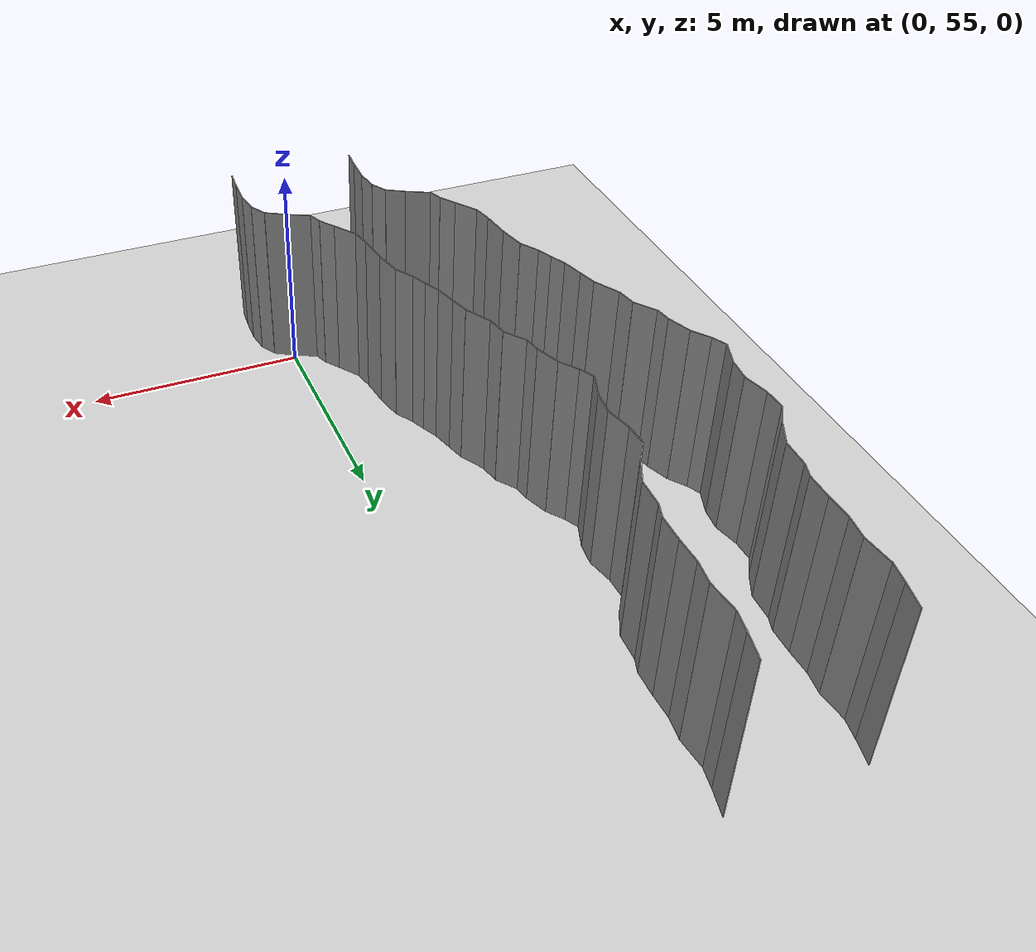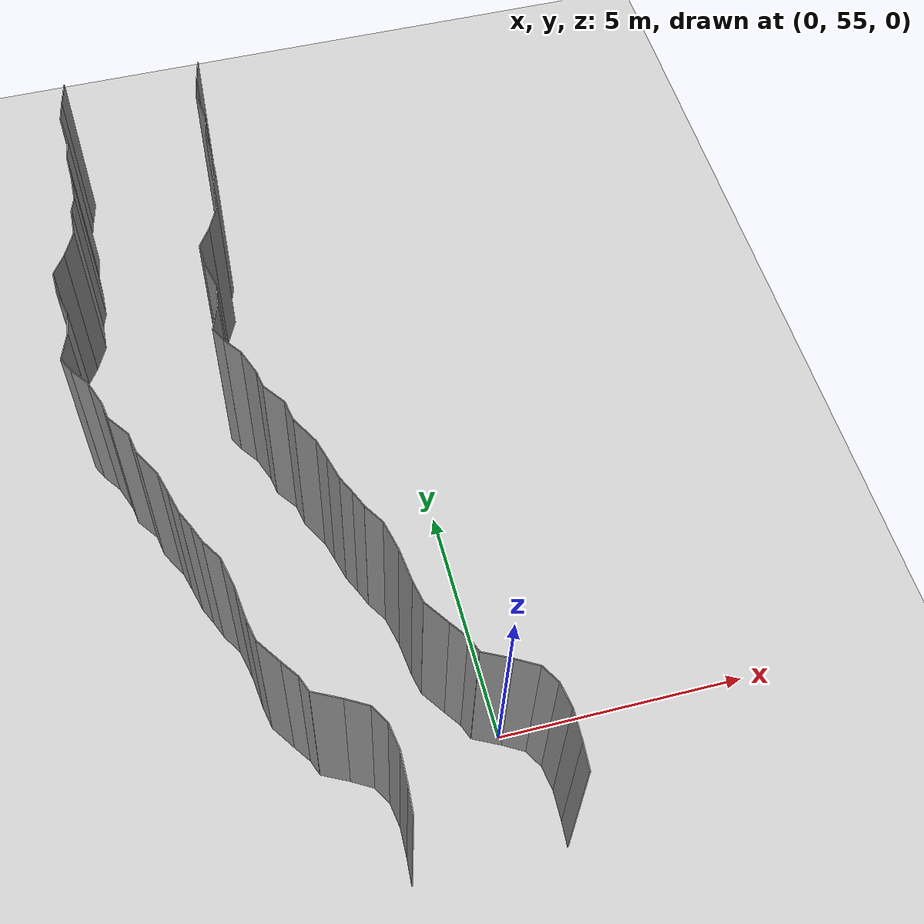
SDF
<sdf version="1.6">
 <world name="default">
  <model name="ground_plane">
   <static>1</static>
   <link name="link">
    <collision name="collision">
     <geometry><plane><normal>0 0 1</normal><size>200 200</size></plane></geometry>
     <surface><friction><ode><mu>100</mu><mu2>50</mu2></ode></friction></surface>
    </collision>
    <visual name="visual">
     <cast_shadows>0</cast_shadows>
     <geometry><plane><normal>0 0 1</normal><size>200 200</size></plane></geometry>
     <material>
      <script><uri>file://media/materials/scripts/gazebo.material</uri><name>Gazebo/Grey</name></script>
     </material>
    </visual>
   </link>
   <pose>0 100 0 0 -0 0</pose>
  </model>
  <model name="wall_224">
   <static>1</static>
   <pose>-2.3359102982344577 52.856014372353535 2 0 0 -0.07759983611430094</pose>
   <link name="link">
    <collision name="collision"><geometry><box><size>0.02 0.508113296003 4</size></box></geometry></collision>
    <visual name="visual">
     <material>
      <script><name>Gazebo/Grey</name><uri>file://media/materials/scripts/gazebo.material</uri></script>
     </material>
     <geometry><box><size>0.02 0.508113296003 4</size></box></geometry>
    </visual>
   </link>
  </model>
  <model name="wall_225">
   <static>1</static>
   <pose>0.6640897017655423 52.856014372353535 2 0 0 -0.07759983611430094</pose>
   <link name="link">
    <collision name="collision"><geometry><box><size>0.02 0.508113296003 4</size></box></geometry></collision>
    <visual name="visual">
     <material>
      <script><name>Gazebo/Grey</name><uri>file://media/materials/scripts/gazebo.material</uri></script>
     </material>
     <geometry><box><size>0.02 0.508113296003 4</size></box></geometry>
    </visual>
   </link>
  </model>
  <model name="wall_226">
   <static>1</static>
   <pose>-2.305103129841839 53.41838339677475 2 0 0 -0.0359373648516644</pose>
   <link name="link">
    <collision name="collision"><geometry><box><size>0.02 0.618553232958 4</size></box></geometry></collision>
    <visual name="visual">
     <material>
      <script><name>Gazebo/Grey</name><uri>file://media/materials/scripts/gazebo.material</uri></script>
     </material>
     <geometry><box><size>0.02 0.618553232958 4</size></box></geometry>
    </visual>
   </link>
  </model>
  <model name="wall_227">
   <static>1</static>
   <pose>0.694896870158161 53.41838339677475 2 0 0 -0.0359373648516644</pose>
   <link name="link">
    <collision name="collision"><geometry><box><size>0.02 0.618553232958 4</size></box></geometry></collision>
    <visual name="visual">
     <material>
      <script><name>Gazebo/Grey</name><uri>file://media/materials/scripts/gazebo.material</uri></script>
     </material>
     <geometry><box><size>0.02 0.618553232958 4</size></box></geometry>
    </visual>
   </link>
  </model>
  <model name="wall_228">
   <static>1</static>
   <pose>-2.3325909983439006 53.9810188793957 2 0 0 0.1510734109438506</pose>
   <link name="link">
    <collision name="collision"><geometry><box><size>0.02 0.512959677786 4</size></box></geometry></collision>
    <visual name="visual">
     <material>
      <script><name>Gazebo/Grey</name><uri>file://media/materials/scripts/gazebo.material</uri></script>
     </material>
     <geometry><box><size>0.02 0.512959677786 4</size></box></geometry>
    </visual>
   </link>
  </model>
  <model name="wall_229">
   <static>1</static>
   <pose>0.6674090016560994 53.9810188793957 2 0 0 0.1510734109438506</pose>
   <link name="link">
    <collision name="collision"><geometry><box><size>0.02 0.512959677786 4</size></box></geometry></collision>
    <visual name="visual">
     <material>
      <script><name>Gazebo/Grey</name><uri>file://media/materials/scripts/gazebo.material</uri></script>
     </material>
     <geometry><box><size>0.02 0.512959677786 4</size></box></geometry>
    </visual>
   </link>
  </model>
  <model name="wall_230">
   <static>1</static>
   <pose>-2.475191520911039 54.41681308273818 2 0 0 0.5185908232200369</pose>
   <link name="link">
    <collision name="collision"><geometry><box><size>0.02 0.419647116719 4</size></box></geometry></collision>
    <visual name="visual">
     <material>
      <script><name>Gazebo/Grey</name><uri>file://media/materials/scripts/gazebo.material</uri></script>
     </material>
     <geometry><box><size>0.02 0.419647116719 4</size></box></geometry>
    </visual>
   </link>
  </model>
  <model name="wall_231">
   <static>1</static>
   <pose>0.5248084790889611 54.41681308273818 2 0 0 0.5185908232200369</pose>
   <link name="link">
    <collision name="collision"><geometry><box><size>0.02 0.419647116719 4</size></box></geometry></collision>
    <visual name="visual">
     <material>
      <script><name>Gazebo/Grey</name><uri>file://media/materials/scripts/gazebo.material</uri></script>
     </material>
     <geometry><box><size>0.02 0.419647116719 4</size></box></geometry>
    </visual>
   </link>
  </model>
  <model name="wall_232">
   <static>1</static>
   <pose>-2.789828894577815 54.720218045606245 2 0 0 1.0487726378894515</pose>
   <link name="link">
    <collision name="collision"><geometry><box><size>0.02 0.48600375844 4</size></box></geometry></collision>
    <visual name="visual">
     <material>
      <script><name>Gazebo/Grey</name><uri>file://media/materials/scripts/gazebo.material</uri></script>
     </material>
     <geometry><box><size>0.02 0.48600375844 4</size></box></geometry>
    </visual>
   </link>
  </model>
  <model name="wall_233">
   <static>1</static>
   <pose>0.2101711054221851 54.720218045606245 2 0 0 1.0487726378894515</pose>
   <link name="link">
    <collision name="collision"><geometry><box><size>0.02 0.48600375844 4</size></box></geometry></collision>
    <visual name="visual">
     <material>
      <script><name>Gazebo/Grey</name><uri>file://media/materials/scripts/gazebo.material</uri></script>
     </material>
     <geometry><box><size>0.02 0.48600375844 4</size></box></geometry>
    </visual>
   </link>
  </model>
  <model name="wall_234">
   <static>1</static>
   <pose>-3.2683793625846995 54.97529888343039 2 0 0 1.1072838685803028</pose>
   <link name="link">
    <collision name="collision"><geometry><box><size>0.02 0.599032444563 4</size></box></geometry></collision>
    <visual name="visual">
     <material>
      <script><name>Gazebo/Grey</name><uri>file://media/materials/scripts/gazebo.material</uri></script>
     </material>
     <geometry><box><size>0.02 0.599032444563 4</size></box></geometry>
    </visual>
   </link>
  </model>
  <model name="wall_235">
   <static>1</static>
   <pose>-0.2683793625846995 54.97529888343039 2 0 0 1.1072838685803028</pose>
   <link name="link">
    <collision name="collision"><geometry><box><size>0.02 0.599032444563 4</size></box></geometry></collision>
    <visual name="visual">
     <material>
      <script><name>Gazebo/Grey</name><uri>file://media/materials/scripts/gazebo.material</uri></script>
     </material>
     <geometry><box><size>0.02 0.599032444563 4</size></box></geometry>
    </visual>
   </link>
  </model>
  <model name="wall_236">
   <static>1</static>
   <pose>-3.5949318400607835 55.26452257958123 2 0 0 0.3610089806441636</pose>
   <link name="link">
    <collision name="collision"><geometry><box><size>0.02 0.332026478814 4</size></box></geometry></collision>
    <visual name="visual">
     <material>
      <script><name>Gazebo/Grey</name><uri>file://media/materials/scripts/gazebo.material</uri></script>
     </material>
     <geometry><box><size>0.02 0.332026478814 4</size></box></geometry>
    </visual>
   </link>
  </model>
  <model name="wall_237">
   <static>1</static>
   <pose>-0.5949318400607835 55.26452257958123 2 0 0 0.3610089806441636</pose>
   <link name="link">
    <collision name="collision"><geometry><box><size>0.02 0.332026478814 4</size></box></geometry></collision>
    <visual name="visual">
     <material>
      <script><name>Gazebo/Grey</name><uri>file://media/materials/scripts/gazebo.material</uri></script>
     </material>
     <geometry><box><size>0.02 0.332026478814 4</size></box></geometry>
    </visual>
   </link>
  </model>
  <model name="wall_238">
   <static>1</static>
   <pose>-3.7744003689441095 55.59032106964446 2 0 0 0.6165643094516821</pose>
   <link name="link">
    <collision name="collision"><geometry><box><size>0.02 0.417925239745 4</size></box></geometry></collision>
    <visual name="visual">
     <material>
      <script><name>Gazebo/Grey</name><uri>file://media/materials/scripts/gazebo.material</uri></script>
     </material>
     <geometry><box><size>0.02 0.417925239745 4</size></box></geometry>
    </visual>
   </link>
  </model>
  <model name="wall_239">
   <static>1</static>
   <pose>-0.7744003689441095 55.59032106964446 2 0 0 0.6165643094516821</pose>
   <link name="link">
    <collision name="collision"><geometry><box><size>0.02 0.417925239745 4</size></box></geometry></collision>
    <visual name="visual">
     <material>
      <script><name>Gazebo/Grey</name><uri>file://media/materials/scripts/gazebo.material</uri></script>
     </material>
     <geometry><box><size>0.02 0.417925239745 4</size></box></geometry>
    </visual>
   </link>
  </model>
  <model name="wall_240">
   <static>1</static>
   <pose>-4.064603842347604 56.009952567020484 2 0 0 0.5970535316060995</pose>
   <link name="link">
    <collision name="collision"><geometry><box><size>0.02 0.602530762697 4</size></box></geometry></collision>
    <visual name="visual">
     <material>
      <script><name>Gazebo/Grey</name><uri>file://media/materials/scripts/gazebo.material</uri></script>
     </material>
     <geometry><box><size>0.02 0.602530762697 4</size></box></geometry>
    </visual>
   </link>
  </model>
  <model name="wall_241">
   <static>1</static>
   <pose>-1.064603842347604 56.009952567020484 2 0 0 0.5970535316060995</pose>
   <link name="link">
    <collision name="collision"><geometry><box><size>0.02 0.602530762697 4</size></box></geometry></collision>
    <visual name="visual">
     <material>
      <script><name>Gazebo/Grey</name><uri>file://media/materials/scripts/gazebo.material</uri></script>
     </material>
     <geometry><box><size>0.02 0.602530762697 4</size></box></geometry>
    </visual>
   </link>
  </model>
  <model name="wall_242">
   <static>1</static>
   <pose>-4.278652368464157 56.47889095040559 2 0 0 0.20052598376622385</pose>
   <link name="link">
    <collision name="collision"><geometry><box><size>0.02 0.448574967873 4</size></box></geometry></collision>
    <visual name="visual">
     <material>
      <script><name>Gazebo/Grey</name><uri>file://media/materials/scripts/gazebo.material</uri></script>
     </material>
     <geometry><box><size>0.02 0.448574967873 4</size></box></geometry>
    </visual>
   </link>
  </model>
  <model name="wall_243">
   <static>1</static>
   <pose>-1.278652368464157 56.47889095040559 2 0 0 0.20052598376622385</pose>
   <link name="link">
    <collision name="collision"><geometry><box><size>0.02 0.448574967873 4</size></box></geometry></collision>
    <visual name="visual">
     <material>
      <script><name>Gazebo/Grey</name><uri>file://media/materials/scripts/gazebo.material</uri></script>
     </material>
     <geometry><box><size>0.02 0.448574967873 4</size></box></geometry>
    </visual>
   </link>
  </model>
  <model name="wall_244">
   <static>1</static>
   <pose>-4.362899017118538 57.04148127822715 2 0 0 0.11492979365488808</pose>
   <link name="link">
    <collision name="collision"><geometry><box><size>0.02 0.690147270935 4</size></box></geometry></collision>
    <visual name="visual">
     <material>
      <script><name>Gazebo/Grey</name><uri>file://media/materials/scripts/gazebo.material</uri></script>
     </material>
     <geometry><box><size>0.02 0.690147270935 4</size></box></geometry>
    </visual>
   </link>
  </model>
  <model name="wall_245">
   <static>1</static>
   <pose>-1.3628990171185382 57.04148127822715 2 0 0 0.11492979365488808</pose>
   <link name="link">
    <collision name="collision"><geometry><box><size>0.02 0.690147270935 4</size></box></geometry></collision>
    <visual name="visual">
     <material>
      <script><name>Gazebo/Grey</name><uri>file://media/materials/scripts/gazebo.material</uri></script>
     </material>
     <geometry><box><size>0.02 0.690147270935 4</size></box></geometry>
    </visual>
   </link>
  </model>
  <model name="wall_246">
   <static>1</static>
   <pose>-4.470513653157024 57.69162182732667 2 0 0 0.21787539295764835</pose>
   <link name="link">
    <collision name="collision"><geometry><box><size>0.02 0.629570582731 4</size></box></geometry></collision>
    <visual name="visual">
     <material>
      <script><name>Gazebo/Grey</name><uri>file://media/materials/scripts/gazebo.material</uri></script>
     </material>
     <geometry><box><size>0.02 0.629570582731 4</size></box></geometry>
    </visual>
   </link>
  </model>
  <model name="wall_247">
   <static>1</static>
   <pose>-1.470513653157024 57.69162182732667 2 0 0 0.21787539295764835</pose>
   <link name="link">
    <collision name="collision"><geometry><box><size>0.02 0.629570582731 4</size></box></geometry></collision>
    <visual name="visual">
     <material>
      <script><name>Gazebo/Grey</name><uri>file://media/materials/scripts/gazebo.material</uri></script>
     </material>
     <geometry><box><size>0.02 0.629570582731 4</size></box></geometry>
    </visual>
   </link>
  </model>
  <model name="wall_248">
   <static>1</static>
   <pose>-4.666322860935048 58.20532946720401 2 0 0 0.5543680427474541</pose>
   <link name="link">
    <collision name="collision"><geometry><box><size>0.02 0.485429646869 4</size></box></geometry></collision>
    <visual name="visual">
     <material>
      <script><name>Gazebo/Grey</name><uri>file://media/materials/scripts/gazebo.material</uri></script>
     </material>
     <geometry><box><size>0.02 0.485429646869 4</size></box></geometry>
    </visual>
   </link>
  </model>
  <model name="wall_249">
   <static>1</static>
   <pose>-1.6663228609350478 58.20532946720401 2 0 0 0.5543680427474541</pose>
   <link name="link">
    <collision name="collision"><geometry><box><size>0.02 0.485429646869 4</size></box></geometry></collision>
    <visual name="visual">
     <material>
      <script><name>Gazebo/Grey</name><uri>file://media/materials/scripts/gazebo.material</uri></script>
     </material>
     <geometry><box><size>0.02 0.485429646869 4</size></box></geometry>
    </visual>
   </link>
  </model>
  <model name="wall_250">
   <static>1</static>
   <pose>-4.865950461681137 58.58469147245386 2 0 0 0.39370029362409004</pose>
   <link name="link">
    <collision name="collision"><geometry><box><size>0.02 0.374658472371 4</size></box></geometry></collision>
    <visual name="visual">
     <material>
      <script><name>Gazebo/Grey</name><uri>file://media/materials/scripts/gazebo.material</uri></script>
     </material>
     <geometry><box><size>0.02 0.374658472371 4</size></box></geometry>
    </visual>
   </link>
  </model>
  <model name="wall_251">
   <static>1</static>
   <pose>-1.8659504616811367 58.58469147245386 2 0 0 0.39370029362409004</pose>
   <link name="link">
    <collision name="collision"><geometry><box><size>0.02 0.374658472371 4</size></box></geometry></collision>
    <visual name="visual">
     <material>
      <script><name>Gazebo/Grey</name><uri>file://media/materials/scripts/gazebo.material</uri></script>
     </material>
     <geometry><box><size>0.02 0.374658472371 4</size></box></geometry>
    </visual>
   </link>
  </model>
  <model name="wall_252">
   <static>1</static>
   <pose>-5.019596044329615 58.932295364348896 2 0 0 0.43804508166088096</pose>
   <link name="link">
    <collision name="collision"><geometry><box><size>0.02 0.385621596714 4</size></box></geometry></collision>
    <visual name="visual">
     <material>
      <script><name>Gazebo/Grey</name><uri>file://media/materials/scripts/gazebo.material</uri></script>
     </material>
     <geometry><box><size>0.02 0.385621596714 4</size></box></geometry>
    </visual>
   </link>
  </model>
  <model name="wall_253">
   <static>1</static>
   <pose>-2.0195960443296146 58.932295364348896 2 0 0 0.43804508166088096</pose>
   <link name="link">
    <collision name="collision"><geometry><box><size>0.02 0.385621596714 4</size></box></geometry></collision>
    <visual name="visual">
     <material>
      <script><name>Gazebo/Grey</name><uri>file://media/materials/scripts/gazebo.material</uri></script>
     </material>
     <geometry><box><size>0.02 0.385621596714 4</size></box></geometry>
    </visual>
   </link>
  </model>
  <model name="wall_254">
   <static>1</static>
   <pose>-5.1672077501411815 59.353247771207826 2 0 0 0.2611132470291813</pose>
   <link name="link">
    <collision name="collision"><geometry><box><size>0.02 0.509979274434 4</size></box></geometry></collision>
    <visual name="visual">
     <material>
      <script><name>Gazebo/Grey</name><uri>file://media/materials/scripts/gazebo.material</uri></script>
     </material>
     <geometry><box><size>0.02 0.509979274434 4</size></box></geometry>
    </visual>
   </link>
  </model>
  <model name="wall_255">
   <static>1</static>
   <pose>-2.1672077501411815 59.353247771207826 2 0 0 0.2611132470291813</pose>
   <link name="link">
    <collision name="collision"><geometry><box><size>0.02 0.509979274434 4</size></box></geometry></collision>
    <visual name="visual">
     <material>
      <script><name>Gazebo/Grey</name><uri>file://media/materials/scripts/gazebo.material</uri></script>
     </material>
     <geometry><box><size>0.02 0.509979274434 4</size></box></geometry>
    </visual>
   </link>
  </model>
  <model name="wall_256">
   <static>1</static>
   <pose>-5.290657223075178 59.80589305586158 2 0 0 0.2723729876647657</pose>
   <link name="link">
    <collision name="collision"><geometry><box><size>0.02 0.42839048323 4</size></box></geometry></collision>
    <visual name="visual">
     <material>
      <script><name>Gazebo/Grey</name><uri>file://media/materials/scripts/gazebo.material</uri></script>
     </material>
     <geometry><box><size>0.02 0.42839048323 4</size></box></geometry>
    </visual>
   </link>
  </model>
  <model name="wall_257">
   <static>1</static>
   <pose>-2.2906572230751783 59.80589305586158 2 0 0 0.2723729876647657</pose>
   <link name="link">
    <collision name="collision"><geometry><box><size>0.02 0.42839048323 4</size></box></geometry></collision>
    <visual name="visual">
     <material>
      <script><name>Gazebo/Grey</name><uri>file://media/materials/scripts/gazebo.material</uri></script>
     </material>
     <geometry><box><size>0.02 0.42839048323 4</size></box></geometry>
    </visual>
   </link>
  </model>
  <model name="wall_258">
   <static>1</static>
   <pose>-5.505178889973572 60.29510163817705 2 0 0 0.506361781487826</pose>
   <link name="link">
    <collision name="collision"><geometry><box><size>0.02 0.64700926934 4</size></box></geometry></collision>
    <visual name="visual">
     <material>
      <script><name>Gazebo/Grey</name><uri>file://media/materials/scripts/gazebo.material</uri></script>
     </material>
     <geometry><box><size>0.02 0.64700926934 4</size></box></geometry>
    </visual>
   </link>
  </model>
  <model name="wall_259">
   <static>1</static>
   <pose>-2.505178889973572 60.29510163817705 2 0 0 0.506361781487826</pose>
   <link name="link">
    <collision name="collision"><geometry><box><size>0.02 0.64700926934 4</size></box></geometry></collision>
    <visual name="visual">
     <material>
      <script><name>Gazebo/Grey</name><uri>file://media/materials/scripts/gazebo.material</uri></script>
     </material>
     <geometry><box><size>0.02 0.64700926934 4</size></box></geometry>
    </visual>
   </link>
  </model>
  <model name="wall_260">
   <static>1</static>
   <pose>-5.703065220521713 60.801594756290974 2 0 0 0.18130533439799648</pose>
   <link name="link">
    <collision name="collision"><geometry><box><size>0.02 0.454618619999 4</size></box></geometry></collision>
    <visual name="visual">
     <material>
      <script><name>Gazebo/Grey</name><uri>file://media/materials/scripts/gazebo.material</uri></script>
     </material>
     <geometry><box><size>0.02 0.454618619999 4</size></box></geometry>
    </visual>
   </link>
  </model>
  <model name="wall_261">
   <static>1</static>
   <pose>-2.7030652205217134 60.801594756290974 2 0 0 0.18130533439799648</pose>
   <link name="link">
    <collision name="collision"><geometry><box><size>0.02 0.454618619999 4</size></box></geometry></collision>
    <visual name="visual">
     <material>
      <script><name>Gazebo/Grey</name><uri>file://media/materials/scripts/gazebo.material</uri></script>
     </material>
     <geometry><box><size>0.02 0.454618619999 4</size></box></geometry>
    </visual>
   </link>
  </model>
  <model name="wall_262">
   <static>1</static>
   <pose>-5.908708701363812 61.25340962510207 2 0 0 0.6249744650437272</pose>
   <link name="link">
    <collision name="collision"><geometry><box><size>0.02 0.562854558998 4</size></box></geometry></collision>
    <visual name="visual">
     <material>
      <script><name>Gazebo/Grey</name><uri>file://media/materials/scripts/gazebo.material</uri></script>
     </material>
     <geometry><box><size>0.02 0.562854558998 4</size></box></geometry>
    </visual>
   </link>
  </model>
  <model name="wall_263">
   <static>1</static>
   <pose>-2.908708701363812 61.25340962510207 2 0 0 0.6249744650437272</pose>
   <link name="link">
    <collision name="collision"><geometry><box><size>0.02 0.562854558998 4</size></box></geometry></collision>
    <visual name="visual">
     <material>
      <script><name>Gazebo/Grey</name><uri>file://media/materials/scripts/gazebo.material</uri></script>
     </material>
     <geometry><box><size>0.02 0.562854558998 4</size></box></geometry>
    </visual>
   </link>
  </model>
  <model name="wall_264">
   <static>1</static>
   <pose>-6.103023851499964 61.65856570751707 2 0 0 0.16608995754905284</pose>
   <link name="link">
    <collision name="collision"><geometry><box><size>0.02 0.358786824984 4</size></box></geometry></collision>
    <visual name="visual">
     <material>
      <script><name>Gazebo/Grey</name><uri>file://media/materials/scripts/gazebo.material</uri></script>
     </material>
     <geometry><box><size>0.02 0.358786824984 4</size></box></geometry>
    </visual>
   </link>
  </model>
  <model name="wall_265">
   <static>1</static>
   <pose>-3.103023851499964 61.65856570751707 2 0 0 0.16608995754905284</pose>
   <link name="link">
    <collision name="collision"><geometry><box><size>0.02 0.358786824984 4</size></box></geometry></collision>
    <visual name="visual">
     <material>
      <script><name>Gazebo/Grey</name><uri>file://media/materials/scripts/gazebo.material</uri></script>
     </material>
     <geometry><box><size>0.02 0.358786824984 4</size></box></geometry>
    </visual>
   </link>
  </model>
  <model name="wall_266">
   <static>1</static>
   <pose>-6.23199558001584 62.10643979270212 2 0 0 0.35133088562535564</pose>
   <link name="link">
    <collision name="collision"><geometry><box><size>0.02 0.577153844235 4</size></box></geometry></collision>
    <visual name="visual">
     <material>
      <script><name>Gazebo/Grey</name><uri>file://media/materials/scripts/gazebo.material</uri></script>
     </material>
     <geometry><box><size>0.02 0.577153844235 4</size></box></geometry>
    </visual>
   </link>
  </model>
  <model name="wall_267">
   <static>1</static>
   <pose>-3.23199558001584 62.10643979270212 2 0 0 0.35133088562535564</pose>
   <link name="link">
    <collision name="collision"><geometry><box><size>0.02 0.577153844235 4</size></box></geometry></collision>
    <visual name="visual">
     <material>
      <script><name>Gazebo/Grey</name><uri>file://media/materials/scripts/gazebo.material</uri></script>
     </material>
     <geometry><box><size>0.02 0.577153844235 4</size></box></geometry>
    </visual>
   </link>
  </model>
  <model name="wall_268">
   <static>1</static>
   <pose>-6.470571471654055 62.56840816110899 2 0 0 0.6299590807751351</pose>
   <link name="link">
    <collision name="collision"><geometry><box><size>0.02 0.472789146207 4</size></box></geometry></collision>
    <visual name="visual">
     <material>
      <script><name>Gazebo/Grey</name><uri>file://media/materials/scripts/gazebo.material</uri></script>
     </material>
     <geometry><box><size>0.02 0.472789146207 4</size></box></geometry>
    </visual>
   </link>
  </model>
  <model name="wall_269">
   <static>1</static>
   <pose>-3.470571471654055 62.56840816110899 2 0 0 0.6299590807751351</pose>
   <link name="link">
    <collision name="collision"><geometry><box><size>0.02 0.472789146207 4</size></box></geometry></collision>
    <visual name="visual">
     <material>
      <script><name>Gazebo/Grey</name><uri>file://media/materials/scripts/gazebo.material</uri></script>
     </material>
     <geometry><box><size>0.02 0.472789146207 4</size></box></geometry>
    </visual>
   </link>
  </model>
  <model name="wall_270">
   <static>1</static>
   <pose>-6.689275732501709 62.91465677732413 2 0 0 0.473017176564167</pose>
   <link name="link">
    <collision name="collision"><geometry><box><size>0.02 0.348753053867 4</size></box></geometry></collision>
    <visual name="visual">
     <material>
      <script><name>Gazebo/Grey</name><uri>file://media/materials/scripts/gazebo.material</uri></script>
     </material>
     <geometry><box><size>0.02 0.348753053867 4</size></box></geometry>
    </visual>
   </link>
  </model>
  <model name="wall_271">
   <static>1</static>
   <pose>-3.6892757325017094 62.91465677732413 2 0 0 0.473017176564167</pose>
   <link name="link">
    <collision name="collision"><geometry><box><size>0.02 0.348753053867 4</size></box></geometry></collision>
    <visual name="visual">
     <material>
      <script><name>Gazebo/Grey</name><uri>file://media/materials/scripts/gazebo.material</uri></script>
     </material>
     <geometry><box><size>0.02 0.348753053867 4</size></box></geometry>
    </visual>
   </link>
  </model>
  <model name="wall_272">
   <static>1</static>
   <pose>-6.665736770924762 63.35857601903824 2 0 0 -0.3426459359933403</pose>
   <link name="link">
    <collision name="collision"><geometry><box><size>0.02 0.613014438112 4</size></box></geometry></collision>
    <visual name="visual">
     <material>
      <script><name>Gazebo/Grey</name><uri>file://media/materials/scripts/gazebo.material</uri></script>
     </material>
     <geometry><box><size>0.02 0.613014438112 4</size></box></geometry>
    </visual>
   </link>
  </model>
  <model name="wall_273">
   <static>1</static>
   <pose>-3.665736770924762 63.35857601903824 2 0 0 -0.3426459359933403</pose>
   <link name="link">
    <collision name="collision"><geometry><box><size>0.02 0.613014438112 4</size></box></geometry></collision>
    <visual name="visual">
     <material>
      <script><name>Gazebo/Grey</name><uri>file://media/materials/scripts/gazebo.material</uri></script>
     </material>
     <geometry><box><size>0.02 0.613014438112 4</size></box></geometry>
    </visual>
   </link>
  </model>
  <model name="wall_274">
   <static>1</static>
   <pose>-6.534555457856282 63.900916896339304 2 0 0 -0.1107250888503604</pose>
   <link name="link">
    <collision name="collision"><geometry><box><size>0.02 0.510428211528 4</size></box></geometry></collision>
    <visual name="visual">
     <material>
      <script><name>Gazebo/Grey</name><uri>file://media/materials/scripts/gazebo.material</uri></script>
     </material>
     <geometry><box><size>0.02 0.510428211528 4</size></box></geometry>
    </visual>
   </link>
  </model>
  <model name="wall_275">
   <static>1</static>
   <pose>-3.534555457856282 63.900916896339304 2 0 0 -0.1107250888503604</pose>
   <link name="link">
    <collision name="collision"><geometry><box><size>0.02 0.510428211528 4</size></box></geometry></collision>
    <visual name="visual">
     <material>
      <script><name>Gazebo/Grey</name><uri>file://media/materials/scripts/gazebo.material</uri></script>
     </material>
     <geometry><box><size>0.02 0.510428211528 4</size></box></geometry>
    </visual>
   </link>
  </model>
  <model name="wall_276">
   <static>1</static>
   <pose>-6.575575774748878 64.4488648760996 2 0 0 0.2310099226311396</pose>
   <link name="link">
    <collision name="collision"><geometry><box><size>0.02 0.604655771246 4</size></box></geometry></collision>
    <visual name="visual">
     <material>
      <script><name>Gazebo/Grey</name><uri>file://media/materials/scripts/gazebo.material</uri></script>
     </material>
     <geometry><box><size>0.02 0.604655771246 4</size></box></geometry>
    </visual>
   </link>
  </model>
  <model name="wall_277">
   <static>1</static>
   <pose>-3.575575774748878 64.4488648760996 2 0 0 0.2310099226311396</pose>
   <link name="link">
    <collision name="collision"><geometry><box><size>0.02 0.604655771246 4</size></box></geometry></collision>
    <visual name="visual">
     <material>
      <script><name>Gazebo/Grey</name><uri>file://media/materials/scripts/gazebo.material</uri></script>
     </material>
     <geometry><box><size>0.02 0.604655771246 4</size></box></geometry>
    </visual>
   </link>
  </model>
  <model name="wall_278">
   <static>1</static>
   <pose>-6.651608842098297 64.98680013885395 2 0 0 0.027951567111604673</pose>
   <link name="link">
    <collision name="collision"><geometry><box><size>0.02 0.487467450803 4</size></box></geometry></collision>
    <visual name="visual">
     <material>
      <script><name>Gazebo/Grey</name><uri>file://media/materials/scripts/gazebo.material</uri></script>
     </material>
     <geometry><box><size>0.02 0.487467450803 4</size></box></geometry>
    </visual>
   </link>
  </model>
  <model name="wall_279">
   <static>1</static>
   <pose>-3.6516088420982973 64.98680013885395 2 0 0 0.027951567111604673</pose>
   <link name="link">
    <collision name="collision"><geometry><box><size>0.02 0.487467450803 4</size></box></geometry></collision>
    <visual name="visual">
     <material>
      <script><name>Gazebo/Grey</name><uri>file://media/materials/scripts/gazebo.material</uri></script>
     </material>
     <geometry><box><size>0.02 0.487467450803 4</size></box></geometry>
    </visual>
   </link>
  </model>
  <model name="wall_280">
   <static>1</static>
   <pose>-6.522048032579576 65.43681549685319 2 0 0 -0.5839261691565527</pose>
   <link name="link">
    <collision name="collision"><geometry><box><size>0.02 0.494727815832 4</size></box></geometry></collision>
    <visual name="visual">
     <material>
      <script><name>Gazebo/Grey</name><uri>file://media/materials/scripts/gazebo.material</uri></script>
     </material>
     <geometry><box><size>0.02 0.494727815832 4</size></box></geometry>
    </visual>
   </link>
  </model>
  <model name="wall_281">
   <static>1</static>
   <pose>-3.522048032579576 65.43681549685319 2 0 0 -0.5839261691565527</pose>
   <link name="link">
    <collision name="collision"><geometry><box><size>0.02 0.494727815832 4</size></box></geometry></collision>
    <visual name="visual">
     <material>
      <script><name>Gazebo/Grey</name><uri>file://media/materials/scripts/gazebo.material</uri></script>
     </material>
     <geometry><box><size>0.02 0.494727815832 4</size></box></geometry>
    </visual>
   </link>
  </model>
  <model name="wall_282">
   <static>1</static>
   <pose>-6.25030322673557 65.91858813037192 2 0 0 -0.45686870970105475</pose>
   <link name="link">
    <collision name="collision"><geometry><box><size>0.02 0.613737600406 4</size></box></geometry></collision>
    <visual name="visual">
     <material>
      <script><name>Gazebo/Grey</name><uri>file://media/materials/scripts/gazebo.material</uri></script>
     </material>
     <geometry><box><size>0.02 0.613737600406 4</size></box></geometry>
    </visual>
   </link>
  </model>
  <model name="wall_283">
   <static>1</static>
   <pose>-3.2503032267355696 65.91858813037192 2 0 0 -0.45686870970105475</pose>
   <link name="link">
    <collision name="collision"><geometry><box><size>0.02 0.613737600406 4</size></box></geometry></collision>
    <visual name="visual">
     <material>
      <script><name>Gazebo/Grey</name><uri>file://media/materials/scripts/gazebo.material</uri></script>
     </material>
     <geometry><box><size>0.02 0.613737600406 4</size></box></geometry>
    </visual>
   </link>
  </model>
  <model name="wall_284">
   <static>1</static>
   <pose>-6.101866665712493 66.50751922160205 2 0 0 -0.04164400060387291</pose>
   <link name="link">
    <collision name="collision"><geometry><box><size>0.02 0.627614728205 4</size></box></geometry></collision>
    <visual name="visual">
     <material>
      <script><name>Gazebo/Grey</name><uri>file://media/materials/scripts/gazebo.material</uri></script>
     </material>
     <geometry><box><size>0.02 0.627614728205 4</size></box></geometry>
    </visual>
   </link>
  </model>
  <model name="wall_285">
   <static>1</static>
   <pose>-3.1018666657124934 66.50751922160205 2 0 0 -0.04164400060387291</pose>
   <link name="link">
    <collision name="collision"><geometry><box><size>0.02 0.627614728205 4</size></box></geometry></collision>
    <visual name="visual">
     <material>
      <script><name>Gazebo/Grey</name><uri>file://media/materials/scripts/gazebo.material</uri></script>
     </material>
     <geometry><box><size>0.02 0.627614728205 4</size></box></geometry>
    </visual>
   </link>
  </model>
  <model name="wall_286">
   <static>1</static>
   <pose>-6.03510114565318 66.98170914249411 2 0 0 -0.3225881769856655</pose>
   <link name="link">
    <collision name="collision"><geometry><box><size>0.02 0.338784394395 4</size></box></geometry></collision>
    <visual name="visual">
     <material>
      <script><name>Gazebo/Grey</name><uri>file://media/materials/scripts/gazebo.material</uri></script>
     </material>
     <geometry><box><size>0.02 0.338784394395 4</size></box></geometry>
    </visual>
   </link>
  </model>
  <model name="wall_287">
   <static>1</static>
   <pose>-3.0351011456531802 66.98170914249411 2 0 0 -0.3225881769856655</pose>
   <link name="link">
    <collision name="collision"><geometry><box><size>0.02 0.338784394395 4</size></box></geometry></collision>
    <visual name="visual">
     <material>
      <script><name>Gazebo/Grey</name><uri>file://media/materials/scripts/gazebo.material</uri></script>
     </material>
     <geometry><box><size>0.02 0.338784394395 4</size></box></geometry>
    </visual>
   </link>
  </model>
  <model name="wall_288">
   <static>1</static>
   <pose>-5.975414184913356 67.44091865273319 2 0 0 -0.020046752765556654</pose>
   <link name="link">
    <collision name="collision"><geometry><box><size>0.02 0.597229774693 4</size></box></geometry></collision>
    <visual name="visual">
     <material>
      <script><name>Gazebo/Grey</name><uri>file://media/materials/scripts/gazebo.material</uri></script>
     </material>
     <geometry><box><size>0.02 0.597229774693 4</size></box></geometry>
    </visual>
   </link>
  </model>
  <model name="wall_289">
   <static>1</static>
   <pose>-2.9754141849133564 67.44091865273319 2 0 0 -0.020046752765556654</pose>
   <link name="link">
    <collision name="collision"><geometry><box><size>0.02 0.597229774693 4</size></box></geometry></collision>
    <visual name="visual">
     <material>
      <script><name>Gazebo/Grey</name><uri>file://media/materials/scripts/gazebo.material</uri></script>
     </material>
     <geometry><box><size>0.02 0.597229774693 4</size></box></geometry>
    </visual>
   </link>
  </model>
  <model name="wall_290">
   <static>1</static>
   <pose>-5.977848973787903 68.02488458547018 2 0 0 0.02949502082618248</pose>
   <link name="link">
    <collision name="collision"><geometry><box><size>0.02 0.571070476971 4</size></box></geometry></collision>
    <visual name="visual">
     <material>
      <script><name>Gazebo/Grey</name><uri>file://media/materials/scripts/gazebo.material</uri></script>
     </material>
     <geometry><box><size>0.02 0.571070476971 4</size></box></geometry>
    </visual>
   </link>
  </model>
  <model name="wall_291">
   <static>1</static>
   <pose>-2.9778489737879026 68.02488458547018 2 0 0 0.02949502082618248</pose>
   <link name="link">
    <collision name="collision"><geometry><box><size>0.02 0.571070476971 4</size></box></geometry></collision>
    <visual name="visual">
     <material>
      <script><name>Gazebo/Grey</name><uri>file://media/materials/scripts/gazebo.material</uri></script>
     </material>
     <geometry><box><size>0.02 0.571070476971 4</size></box></geometry>
    </visual>
   </link>
  </model>
  <model name="wall_292">
   <static>1</static>
   <pose>-5.949765442959486 68.56686507070228 2 0 0 -0.1413294138390024</pose>
   <link name="link">
    <collision name="collision"><geometry><box><size>0.02 0.518306597205 4</size></box></geometry></collision>
    <visual name="visual">
     <material>
      <script><name>Gazebo/Grey</name><uri>file://media/materials/scripts/gazebo.material</uri></script>
     </material>
     <geometry><box><size>0.02 0.518306597205 4</size></box></geometry>
    </visual>
   </link>
  </model>
  <model name="wall_293">
   <static>1</static>
   <pose>-2.949765442959486 68.56686507070228 2 0 0 -0.1413294138390024</pose>
   <link name="link">
    <collision name="collision"><geometry><box><size>0.02 0.518306597205 4</size></box></geometry></collision>
    <visual name="visual">
     <material>
      <script><name>Gazebo/Grey</name><uri>file://media/materials/scripts/gazebo.material</uri></script>
     </material>
     <geometry><box><size>0.02 0.518306597205 4</size></box></geometry>
    </visual>
   </link>
  </model>
  <model name="wall_294">
   <static>1</static>
   <pose>-5.9493696692050335 69.1688327432387 2 0 0 0.10416300538810727</pose>
   <link name="link">
    <collision name="collision"><geometry><box><size>0.02 0.694561030671 4</size></box></geometry></collision>
    <visual name="visual">
     <material>
      <script><name>Gazebo/Grey</name><uri>file://media/materials/scripts/gazebo.material</uri></script>
     </material>
     <geometry><box><size>0.02 0.694561030671 4</size></box></geometry>
    </visual>
   </link>
  </model>
  <model name="wall_295">
   <static>1</static>
   <pose>-2.9493696692050335 69.1688327432387 2 0 0 0.10416300538810727</pose>
   <link name="link">
    <collision name="collision"><geometry><box><size>0.02 0.694561030671 4</size></box></geometry></collision>
    <visual name="visual">
     <material>
      <script><name>Gazebo/Grey</name><uri>file://media/materials/scripts/gazebo.material</uri></script>
     </material>
     <geometry><box><size>0.02 0.694561030671 4</size></box></geometry>
    </visual>
   </link>
  </model>
  <model name="wall_296">
   <static>1</static>
   <pose>-5.942454327676174 69.7414307523589 2 0 0 -0.18714925404806637</pose>
   <link name="link">
    <collision name="collision"><geometry><box><size>0.02 0.462474997541 4</size></box></geometry></collision>
    <visual name="visual">
     <material>
      <script><name>Gazebo/Grey</name><uri>file://media/materials/scripts/gazebo.material</uri></script>
     </material>
     <geometry><box><size>0.02 0.462474997541 4</size></box></geometry>
    </visual>
   </link>
  </model>
  <model name="wall_297">
   <static>1</static>
   <pose>-2.942454327676174 69.7414307523589 2 0 0 -0.18714925404806637</pose>
   <link name="link">
    <collision name="collision"><geometry><box><size>0.02 0.462474997541 4</size></box></geometry></collision>
    <visual name="visual">
     <material>
      <script><name>Gazebo/Grey</name><uri>file://media/materials/scripts/gazebo.material</uri></script>
     </material>
     <geometry><box><size>0.02 0.462474997541 4</size></box></geometry>
    </visual>
   </link>
  </model>
  <model name="wall_298">
   <static>1</static>
   <pose>-5.834191690869754 70.25809321372519 2 0 0 -0.22167541658102183</pose>
   <link name="link">
    <collision name="collision"><geometry><box><size>0.02 0.59344674312 4</size></box></geometry></collision>
    <visual name="visual">
     <material>
      <script><name>Gazebo/Grey</name><uri>file://media/materials/scripts/gazebo.material</uri></script>
     </material>
     <geometry><box><size>0.02 0.59344674312 4</size></box></geometry>
    </visual>
   </link>
  </model>
  <model name="wall_299">
   <static>1</static>
   <pose>-2.834191690869754 70.25809321372519 2 0 0 -0.22167541658102183</pose>
   <link name="link">
    <collision name="collision"><geometry><box><size>0.02 0.59344674312 4</size></box></geometry></collision>
    <visual name="visual">
     <material>
      <script><name>Gazebo/Grey</name><uri>file://media/materials/scripts/gazebo.material</uri></script>
     </material>
     <geometry><box><size>0.02 0.59344674312 4</size></box></geometry>
    </visual>
   </link>
  </model>
 </world>
</sdf>
